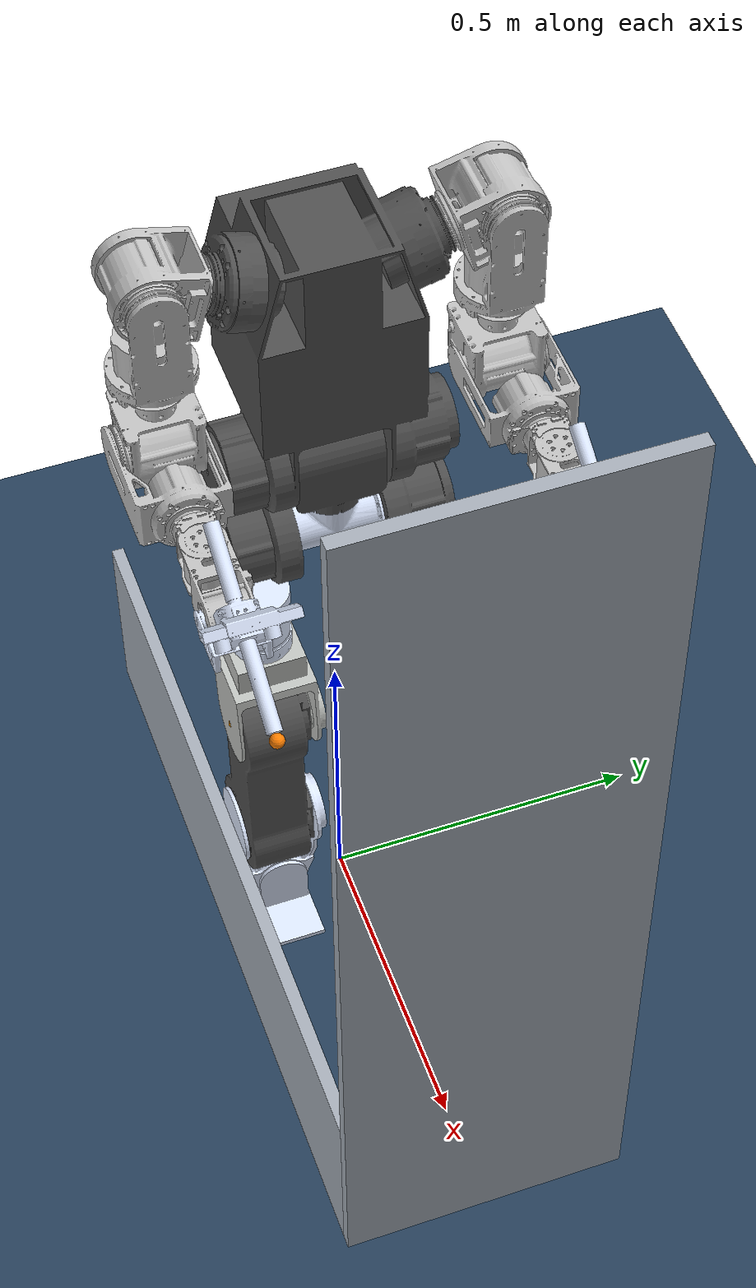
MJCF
<mujoco model="walking scene">

    <!-- Default options -->
    <compiler angle="radian" autolimits="true" />
    <option integrator="Euler" timestep="0.005" />
    <default>
        <joint armature="0.1" damping="0.1" />
        <default class="visual_only">
            <!-- visual group of 'collision' of 2 is to render -->
            <!-- All geoms with contype⁠=⁠conaffinity⁠=0 are discarded -->
            <geom type="mesh" contype="0" conaffinity="0" group="2" />
        </default>
        <default class="visual_collision">
            <!-- visual group of 'collision' of 2 is to render -->
            <geom type="mesh" solimp=".9 .99 .001" solref=".015 1" group="2" />
        </default>
        <default class="no_visual_collision">
            <!-- visual group of 'collision' of 3 is NOT to render -->
            <geom type="capsule" solimp=".9 .99 .001" solref=".015 1" group="3" />
        </default>
    </default>

  <include file="./prototype_v2.1.1.xml" />

  <!-- Floor and Sky -->
  <include file="./floor.xml" />

  <worldbody>
    <geom name="wall_y_positive" type="box" pos="0.075 0.210 0.160"
          size="0.575 0.010 0.160" rgba="0.65 0.68 0.72 1"
          contype="1" conaffinity="1" group="1" />
    <geom name="wall_y_negative" type="box" pos="0.075 -0.210 0.160"
          size="0.575 0.010 0.160" rgba="0.65 0.68 0.72 1"
          contype="1" conaffinity="1" group="1" />
    <geom name="wall_x_front" type="box" pos="0.660 0 0.800"
          size="0.010 0.220 0.800" rgba="0.65 0.68 0.72 1"
          contype="1" conaffinity="1" group="1" />
  </worldbody>

</mujoco>

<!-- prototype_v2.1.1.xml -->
<mujoco model="prototype_v2.1.1">
  <compiler angle="radian" />
  <asset>
    <mesh name="pelvis_link" content_type="model/stl" file="../meshes/pelvis_link.STL" />
    <mesh name="left_hip_pitch_link" content_type="model/stl" file="../meshes/left_hip_pitch_link.STL" />
    <mesh name="left_hip_roll_link" content_type="model/stl" file="../meshes/left_hip_roll_link.STL" />
    <mesh name="left_hip_yaw_link" content_type="model/stl" file="../meshes/left_hip_yaw_link.STL" />
    <mesh name="left_knee_pitch_link" content_type="model/stl" file="../meshes/left_knee_pitch_link.STL" />
    <mesh name="left_ankle_pitch_link" content_type="model/stl" file="../meshes/left_ankle_pitch_link.STL" />
    <mesh name="left_ankle_roll_link" content_type="model/stl" file="../meshes/left_ankle_roll_link.STL" />
    <mesh name="right_hip_pitch_link" content_type="model/stl" file="../meshes/right_hip_pitch_link.STL" />
    <mesh name="right_hip_roll_link" content_type="model/stl" file="../meshes/right_hip_roll_link.STL" />
    <mesh name="right_hip_yaw_link" content_type="model/stl" file="../meshes/right_hip_yaw_link.STL" />
    <mesh name="right_knee_pitch_link" content_type="model/stl" file="../meshes/right_knee_pitch_link.STL" />
    <mesh name="right_ankle_pitch_link" content_type="model/stl" file="../meshes/right_ankle_pitch_link.STL" />
    <mesh name="right_ankle_roll_link" content_type="model/stl" file="../meshes/right_ankle_roll_link.STL" />
    <mesh name="waist_yaw_link" content_type="model/stl" file="../meshes/waist_yaw_link.STL" />
    <mesh name="waist_pitch_link" content_type="model/stl" file="../meshes/waist_pitch_link.STL" />
    <mesh name="left_shoulder_pitch_link" content_type="model/stl" file="../meshes/left_shoulder_pitch_link.STL" />
    <mesh name="left_shoulder_roll_link" content_type="model/stl" file="../meshes/left_shoulder_roll_link.STL" />
    <mesh name="left_shoulder_yaw_link" content_type="model/stl" file="../meshes/left_shoulder_yaw_link.STL" />
    <mesh name="left_elbow_pitch_link" content_type="model/stl" file="../meshes/left_elbow_pitch_link.STL" />
    <mesh name="left_wrist_roll_link" content_type="model/stl" file="../meshes/left_wrist_roll_link.STL" />
    <mesh name="left_wrist_yaw_link" content_type="model/stl" file="../meshes/left_wrist_yaw_link.STL" />
    <mesh name="right_shoulder_pitch_link" content_type="model/stl" file="../meshes/right_shoulder_pitch_link.STL" />
    <mesh name="right_shoulder_roll_link" content_type="model/stl" file="../meshes/right_shoulder_roll_link.STL" />
    <mesh name="right_shoulder_yaw_link" content_type="model/stl" file="../meshes/right_shoulder_yaw_link.STL" />
    <mesh name="right_elbow_pitch_link" content_type="model/stl" file="../meshes/right_elbow_pitch_link.STL" />
    <mesh name="right_wrist_roll_link" content_type="model/stl" file="../meshes/right_wrist_roll_link.STL" />
    <mesh name="right_wrist_yaw_link" content_type="model/stl" file="../meshes/right_wrist_yaw_link.STL" />
    <mesh name="right_wrist_pitch_link" content_type="model/stl" file="../../prototype_v2.1/meshes/right_wrist_pitch_link.STL" />
  </asset>
  <worldbody>
    <body name="pelvis_link" pos="0 0 0.85851">
      <inertial pos="-8.97641009268044E-09 -2.77555756156289E-17 0.0108648264545672" mass="0.784597038788837" fullinertia="0.00185392443193884 0.00119922876251883 0.0017074386215359 -1.45618415560541E-10 -6.93611949427077E-07 3.18516087515177E-20" />
      <freejoint name="floating_base_joint" />
      <geom type="mesh" rgba="0.866667 0.909804 1 1" mesh="pelvis_link" />
      <body name="left_hip_pitch_link" pos="0 0.065 0">
        <inertial pos="-0.00820054 0.0460811 -0.00473458" quat="0.627526 0.380718 0.325875 0.595878" mass="4.25232" diaginertia="0.00965432 0.00860328 0.00838481" />
        <joint name="left_hip_pitch_joint" range="-3.1416 3.1416" actuatorfrcrange="-440 440" axis="0 1 0" />
        <geom type="mesh" rgba="0.309804 0.309804 0.309804 1" mesh="left_hip_pitch_link" />
        <body name="left_hip_roll_link" pos="-0.086603 0.04555 -0.05">
          <inertial pos="-0.011502 9.43627e-05 -0.0653877" quat="0.961489 0.00699261 -0.274733 0.00330553" mass="6.23838" diaginertia="0.0162939 0.0138826 0.0121148" />
          <joint name="left_hip_roll_joint" range="-3.1416 3.1416" actuatorfrcrange="-440 440" axis="-0.866027 0 -0.499998" />
          <geom type="mesh" rgba="0.866667 0.909804 1 1" mesh="left_hip_roll_link" />
          <body name="left_hip_yaw_link" pos="0.08384 0 -0.18411" quat="0.999731 0 -0.0232019 0">
            <inertial pos="0.00719369 -0.00171514 -0.0808675" quat="0.997364 0.0302373 -0.0658739 0.00346918" mass="1.22854" diaginertia="0.00707314 0.0056853 0.00451328" />
            <joint name="left_hip_yaw_joint" range="-3.1416 3.1416" actuatorfrcrange="-120 120" axis="0.0463912 0 0.998923" />
            <geom type="mesh" rgba="0.866667 0.909804 1 1" mesh="left_hip_yaw_link" />
            <body name="left_knee_pitch_link" pos="0.012788 0.05311 -0.15576">
              <inertial pos="-0.00931024 -0.0488192 -0.13476" quat="0.706239 0.024912 0.0248638 0.707098" mass="9.25315" diaginertia="0.0448875 0.0406769 0.0205352" />
              <joint name="left_knee_pitch_joint" range="-2.2689 2.2689" actuatorfrcrange="-440 440" axis="0 1 0" />
              <geom type="mesh" rgba="0.866667 0.909804 1 1" mesh="left_knee_pitch_link" />
              <body name="left_ankle_pitch_link" pos="-0.02 0 -0.26926" quat="0.999731 0 0.0232019 0">
                <inertial pos="-0.00242028 -0.0550444 -0.0779381" quat="0.999533 -0.0305693 -5.73122e-05 -3.36933e-06" mass="1.08931" diaginertia="0.00472436 0.00326892 0.00259595" />
                <joint name="left_ankle_pitch_joint" range="-2.0944 2.0944" actuatorfrcrange="-440 440" axis="0 1 0" />
                <geom type="mesh" rgba="0.866667 0.909804 1 1" mesh="left_ankle_pitch_link" />
                <body name="left_ankle_roll_link" pos="0.03525 -0.05311 -0.125">
                  <inertial pos="-0.0406029 0 -0.0527118" quat="0 0.723754 0 0.690059" mass="1.08392" diaginertia="0.00359429 0.00327638 0.000945788" />
                  <joint name="left_ankle_roll_joint" range="-0.6981 0.6981" actuatorfrcrange="-60 60" axis="1 0 0" />
                  <geom type="mesh" rgba="0.866667 0.909804 1 1" mesh="left_ankle_roll_link" />
                  <site name="left_foot_floor" pos="-0.04125 0 -0.0735" size="0.008" rgba="0 1 0 1" />
                </body>
              </body>
              <site name="left_knee_frame" pos="0 0 0" size="0.008" rgba="1 0.6 0 1" />
            </body>
          </body>
        </body>
      </body>
      <body name="right_hip_pitch_link" pos="0 -0.065 0">
        <inertial pos="-0.00820054 -0.0460811 -0.00473458" quat="0.595585 0.326458 0.381313 0.627139" mass="4.25232" diaginertia="0.00965431 0.00860402 0.00838408" />
        <joint name="right_hip_pitch_joint" range="-3.1416 3.1416" actuatorfrcrange="-440 440" axis="0 1 0" />
        <geom type="mesh" rgba="0.309804 0.309804 0.309804 1" mesh="right_hip_pitch_link" />
        <body name="right_hip_roll_link" pos="-0.086603 -0.04555 -0.05">
          <inertial pos="-0.011502 9.43564e-05 -0.0653877" quat="0.961489 0.00702423 -0.274734 0.00331514" mass="6.23838" diaginertia="0.0162939 0.0138822 0.0121152" />
          <joint name="right_hip_roll_joint" range="-3.1416 3.1416" actuatorfrcrange="-440 440" axis="-0.866027 0 -0.499998" />
          <geom type="mesh" rgba="0.866667 0.909804 1 1" mesh="right_hip_roll_link" />
          <body name="right_hip_yaw_link" pos="0.08384 0 -0.18411">
            <inertial pos="0.0109375 0.00158201 -0.0804467" quat="0.995567 -0.0301486 -0.0889969 -0.00416984" mass="1.22854" diaginertia="0.00707314 0.0056853 0.00451328" />
            <joint name="right_hip_yaw_joint" range="-3.1416 3.1416" actuatorfrcrange="-120 120" />
            <geom type="mesh" rgba="0.756863 0.768627 0.752941 1" mesh="right_hip_yaw_link" />
            <body name="right_knee_pitch_link" pos="0.02 -0.05661 -0.155">
              <inertial pos="-0.00304801 0.048819 -0.135047" quat="0.707496 0.00822351 0.00825132 0.706622" mass="9.25308" diaginertia="0.0448873 0.0408486 0.0203631" />
              <joint name="right_knee_pitch_joint" range="-2.2689 2.2689" actuatorfrcrange="-440 440" axis="0 1 0" />
              <geom type="mesh" rgba="0.309804 0.309804 0.309804 1" mesh="right_knee_pitch_link" />
              <body name="right_ankle_pitch_link" pos="-0.0074854 0 -0.2699">
                <inertial pos="-0.00242028 0.0550444 -0.0779381" quat="0.99954 0.0303284 -5.72928e-05 3.34587e-06" mass="1.08931" diaginertia="0.00472436 0.00326963 0.00259524" />
                <joint name="right_ankle_pitch_joint" range="-2.0944 2.0944" actuatorfrcrange="-440 440" axis="0 1 0" />
                <geom type="mesh" rgba="0.866667 0.909804 1 1" mesh="right_ankle_pitch_link" />
                <body name="right_ankle_roll_link" pos="0.03525 0.05311 -0.125">
                  <inertial pos="-0.0406029 0 -0.0527118" quat="0 0.723754 0 0.690059" mass="1.08392" diaginertia="0.00359429 0.00327638 0.000945788" />
                  <joint name="right_ankle_roll_joint" range="-0.6981 0.6981" actuatorfrcrange="-60 60" axis="1 0 0" />
                  <geom type="mesh" rgba="0.866667 0.909804 1 1" mesh="right_ankle_roll_link" />
                  <site name="right_foot_floor" pos="-0.04125 0 -0.0735" size="0.008" rgba="0 1 0 1" />
                </body>
              </body>
              <site name="right_knee_frame" pos="0 0 0" size="0.008" rgba="1 0.6 0 1" />
            </body>
          </body>
        </body>
      </body>
      <body name="waist_yaw_link" pos="0 0 0.049">
        <inertial pos="0 7.3596e-09 0.076521" quat="0.707107 0.707107 0 0" mass="1.51535" diaginertia="0.00470753 0.00431502 0.0033082" />
        <joint name="waist_yaw_joint" range="-3.1416 3.1416" actuatorfrcrange="-120 120" />
        <geom type="mesh" rgba="0.309804 0.309804 0.309804 1" mesh="waist_yaw_link" />
        <body name="waist_pitch_link" pos="0 0 0.1025">
          <inertial pos="-0.00245884 0.000228142 0.126528" quat="0.715083 0.698439 -0.0176726 0.0229529" mass="16.5953" diaginertia="0.117269 0.0884814 0.0840695" />
          <joint name="waist_pitch_joint" range="-0.5236 1.5708" actuatorfrcrange="-880 880" axis="0 1 0" />
          <geom type="mesh" rgba="0.309804 0.309804 0.309804 1" mesh="waist_pitch_link" />
          <body name="left_shoulder_pitch_link" pos="0.005002 0.16096 0.34961">
            <inertial pos="0.00351066 0.0593843 0.0158737" quat="0.596739 0.785659 -0.100608 -0.128531" mass="1.30301" diaginertia="0.00210813 0.00169533 0.00157503" />
            <joint name="left_shoulder_pitch_joint" range="-2.22529 2.22529" actuatorfrcrange="-120 120" axis="0 0.965926 0.258819" />
            <geom type="mesh" rgba="0.752941 0.752941 0.752941 1" mesh="left_shoulder_pitch_link" />
            <body name="left_shoulder_roll_link" pos="0.056998 0.076308 0.020448">
              <inertial pos="-0.0391671 -0.000373265 -0.103067" quat="0.976825 -0.00972197 0.208858 -0.045782" mass="1.31133" diaginertia="0.00254636 0.00253025 0.00157224" />
              <joint name="left_shoulder_roll_joint" range="-0.261799 3.40339" actuatorfrcrange="-120 120" axis="1 0 0" />
              <geom type="mesh" rgba="0.752941 0.752941 0.752941 1" mesh="left_shoulder_roll_link" />
              <body name="left_shoulder_yaw_link" pos="-0.047998 0 -0.164">
                <inertial pos="1.04708e-05 0.00306252 -0.0835337" quat="0.698327 0.109537 -0.106087 0.699347" mass="1.41633" diaginertia="0.00201873 0.00165446 0.00154855" />
                <joint name="left_shoulder_yaw_joint" range="-2.2253 2.2253" actuatorfrcrange="-120 120" axis="0 0 -1" />
                <geom type="mesh" rgba="0.752941 0.752941 0.752941 1" mesh="left_shoulder_yaw_link" />
                <body name="left_elbow_pitch_link" pos="0 0.057 -0.109">
                  <inertial pos="0.0989174 -0.0428684 1.12374e-05" quat="0.100037 0.69785 -0.114325 0.699949" mass="0.884104" diaginertia="0.00177209 0.00174286 0.000784864" />
                  <joint name="left_elbow_pitch_joint" range="-0.698132 3.83972" actuatorfrcrange="-120 120" axis="0 1 0" />
                  <geom type="mesh" rgba="0.752941 0.752941 0.752941 1" mesh="left_elbow_pitch_link" />
                  <body name="left_wrist_roll_link" pos="0.155502 -0.053 0">
                    <inertial pos="0.0409389 1.44011e-06 0.000142694" quat="0.000167826 0.394201 3.11856e-05 0.919024" mass="0.327222" diaginertia="0.000187696 0.000182806 0.000136231" />
                    <joint name="left_wrist_roll_joint" range="-2.96706 2.96706" actuatorfrcrange="-60 60" axis="1 0 0" />
                    <geom type="mesh" rgba="0.752941 0.752941 0.752941 1" mesh="left_wrist_roll_link" />
                    <body name="left_wrist_yaw_link" pos="0.057 0 0.031">
                      <inertial pos="0.0668216 0.000906687 -0.0264071" quat="0.000750639 0.702279 -0.000979261 0.711901" mass="0.398649" diaginertia="0.000245797 0.000235943 0.000145456" />
                      <joint name="left_wrist_yaw_joint" range="-1.26275 1.26275" actuatorfrcrange="-36 36" />
                      <geom type="mesh" rgba="0.752941 0.752941 0.752941 1" mesh="left_wrist_yaw_link" />
                      <body name="left_wrist_pitch_link" pos="0.097 0.0315 -0.0285">
                        <inertial pos="0.0701643 -0.0080589 0.0124248" quat="0.639163 -0.0845284 -0.0710007 0.761108" mass="0.2" diaginertia="0.000562349 0.000499452 0.000130589" />
                        <joint name="left_wrist_pitch_joint" range="-1.5708 1.5708" actuatorfrcrange="-36 36" axis="0 1 0" />
                        <geom type="mesh" rgba="0.866667 0.909804 1 1" mesh="right_wrist_pitch_link" />
                      </body>
                    </body>
                  </body>
                </body>
              </body>
            </body>
          </body>
          <body name="right_shoulder_pitch_link" pos="0.00499851 -0.160962 0.349607">
            <inertial pos="0.00351417 -0.059365 0.0159458" quat="0.779749 0.604441 0.130447 0.0981125" mass="1.30301" diaginertia="0.00210813 0.00169533 0.00157503" />
            <joint name="right_shoulder_pitch_joint" range="-2.22529 2.22529" actuatorfrcrange="-120 120" axis="0 -0.965926 0.258819" />
            <geom type="mesh" rgba="0.752941 0.752941 0.752941 1" mesh="right_shoulder_pitch_link" />
            <body name="right_shoulder_roll_link" pos="0.0570015 -0.0763084 0.0204462">
              <inertial pos="-0.0391671 -0.000373022 -0.103063" quat="0.976825 -0.00972197 0.208858 -0.045782" mass="1.31133" diaginertia="0.00254636 0.00253025 0.00157224" />
              <joint name="right_shoulder_roll_joint" range="-3.40339 0.261799" actuatorfrcrange="-120 120" axis="1 0 0" />
              <geom type="mesh" rgba="0.752941 0.752941 0.752941 1" mesh="right_shoulder_roll_link" />
              <body name="right_shoulder_yaw_link" pos="-0.0479978 0 -0.163998">
                <inertial pos="-1.49518e-05 -0.00306231 -0.0835337" quat="0.698327 -0.109537 0.106087 0.699347" mass="1.41633" diaginertia="0.00201873 0.00165446 0.00154855" />
                <joint name="right_shoulder_yaw_joint" range="-2.2253 2.2253" actuatorfrcrange="-120 120" axis="0 0 -1" />
                <geom type="mesh" rgba="0.752941 0.752941 0.752941 1" mesh="right_shoulder_yaw_link" />
                <body name="right_elbow_pitch_link" pos="0 -0.0569999 -0.109">
                  <inertial pos="0.0989129 0.0428684 -1.17024e-05" quat="-0.114325 0.699949 0.100037 0.69785" mass="0.884104" diaginertia="0.00177209 0.00174286 0.000784864" />
                  <joint name="right_elbow_pitch_joint" range="-0.698132 3.83972" actuatorfrcrange="-120 120" axis="0 -1 0" />
                  <geom type="mesh" rgba="0.752941 0.752941 0.752941 1" mesh="right_elbow_pitch_link" />
                  <body name="right_wrist_roll_link" pos="0.155498 0.053 0">
                    <inertial pos="0.0409389 1.44011e-06 0.000142694" quat="0.000167826 0.394201 3.11856e-05 0.919024" mass="0.327222" diaginertia="0.000187696 0.000182806 0.000136231" />
                    <joint name="right_wrist_roll_joint" range="-2.96706 2.96706" actuatorfrcrange="-60 60" axis="1 0 0" />
                    <geom type="mesh" rgba="0.752941 0.752941 0.752941 1" mesh="right_wrist_roll_link" />
                    <body name="right_wrist_yaw_link" pos="0.057 0 0.031">
                      <inertial pos="0.0668216 0.000906687 -0.0264071" quat="0.000750639 0.702279 -0.000979261 0.711901" mass="0.398649" diaginertia="0.000245797 0.000235943 0.000145456" />
                      <joint name="right_wrist_yaw_joint" range="-1.26275 1.26275" actuatorfrcrange="-36 36" />
                      <geom type="mesh" rgba="0.752941 0.752941 0.752941 1" mesh="right_wrist_yaw_link" />
                      <body name="right_wrist_pitch_link" pos="0.097 0.0315 -0.0285">
                        <inertial pos="0.0701643 -0.0080589 0.0124248" quat="0.639163 -0.0845284 -0.0710007 0.761108" mass="0.2" diaginertia="0.000562349 0.000499452 0.000130589" />
                        <joint name="right_wrist_pitch_joint" range="-1.5708 1.5708" actuatorfrcrange="-36 36" axis="0 1 0" />
                        <geom type="mesh" rgba="0.866667 0.909804 1 1" mesh="right_wrist_pitch_link" />
                        <site name="right_welding_point" pos="0.19535 -0.032 -0.01908" size="0.01" rgba="1 0.5 0 1" />
                      </body>
                    </body>
                  </body>
                </body>
              </body>
            </body>
          </body>
        </body>
      </body>
    </body>
  </worldbody>
  <actuator>
    <general name="left_hip_pitch_joint" joint="left_hip_pitch_joint" ctrllimited="true" ctrlrange="-440 440" forcelimited="true" forcerange="-440 440" />
    <general name="left_hip_roll_joint" joint="left_hip_roll_joint" ctrllimited="true" ctrlrange="-440 440" forcelimited="true" forcerange="-440 440" />
    <general name="left_hip_yaw_joint" joint="left_hip_yaw_joint" ctrllimited="true" ctrlrange="-120 120" forcelimited="true" forcerange="-120 120" />
    <general name="left_knee_pitch_joint" joint="left_knee_pitch_joint" ctrllimited="true" ctrlrange="-440 440" forcelimited="true" forcerange="-440 440" />
    <general name="left_ankle_pitch_joint" joint="left_ankle_pitch_joint" ctrllimited="true" ctrlrange="-440 440" forcelimited="true" forcerange="-440 440" />
    <general name="left_ankle_roll_joint" joint="left_ankle_roll_joint" ctrllimited="true" ctrlrange="-60 60" forcelimited="true" forcerange="-60 60" />
    <general name="right_hip_pitch_joint" joint="right_hip_pitch_joint" ctrllimited="true" ctrlrange="-440 440" forcelimited="true" forcerange="-440 440" />
    <general name="right_hip_roll_joint" joint="right_hip_roll_joint" ctrllimited="true" ctrlrange="-440 440" forcelimited="true" forcerange="-440 440" />
    <general name="right_hip_yaw_joint" joint="right_hip_yaw_joint" ctrllimited="true" ctrlrange="-120 120" forcelimited="true" forcerange="-120 120" />
    <general name="right_knee_pitch_joint" joint="right_knee_pitch_joint" ctrllimited="true" ctrlrange="-440 440" forcelimited="true" forcerange="-440 440" />
    <general name="right_ankle_pitch_joint" joint="right_ankle_pitch_joint" ctrllimited="true" ctrlrange="-440 440" forcelimited="true" forcerange="-440 440" />
    <general name="right_ankle_roll_joint" joint="right_ankle_roll_joint" ctrllimited="true" ctrlrange="-60 60" forcelimited="true" forcerange="-60 60" />
    <general name="waist_yaw_joint" joint="waist_yaw_joint" ctrllimited="true" ctrlrange="-120 120" forcelimited="true" forcerange="-120 120" />
    <general name="waist_pitch_joint" joint="waist_pitch_joint" ctrllimited="true" ctrlrange="-880 880" forcelimited="true" forcerange="-880 880" />
    <general name="left_shoulder_pitch_joint" joint="left_shoulder_pitch_joint" ctrllimited="true" ctrlrange="-120 120" forcelimited="true" forcerange="-120 120" />
    <general name="left_shoulder_roll_joint" joint="left_shoulder_roll_joint" ctrllimited="true" ctrlrange="-120 120" forcelimited="true" forcerange="-120 120" />
    <general name="left_shoulder_yaw_joint" joint="left_shoulder_yaw_joint" ctrllimited="true" ctrlrange="-120 120" forcelimited="true" forcerange="-120 120" />
    <general name="left_elbow_pitch_joint" joint="left_elbow_pitch_joint" ctrllimited="true" ctrlrange="-120 120" forcelimited="true" forcerange="-120 120" />
    <general name="left_wrist_roll_joint" joint="left_wrist_roll_joint" ctrllimited="true" ctrlrange="-60 60" forcelimited="true" forcerange="-60 60" />
    <general name="left_wrist_yaw_joint" joint="left_wrist_yaw_joint" ctrllimited="true" ctrlrange="-36 36" forcelimited="true" forcerange="-36 36" />
    <general name="left_wrist_pitch_joint" joint="left_wrist_pitch_joint" ctrllimited="true" ctrlrange="-36 36" forcelimited="true" forcerange="-36 36" />
    <general name="right_shoulder_pitch_joint" joint="right_shoulder_pitch_joint" ctrllimited="true" ctrlrange="-120 120" forcelimited="true" forcerange="-120 120" />
    <general name="right_shoulder_roll_joint" joint="right_shoulder_roll_joint" ctrllimited="true" ctrlrange="-120 120" forcelimited="true" forcerange="-120 120" />
    <general name="right_shoulder_yaw_joint" joint="right_shoulder_yaw_joint" ctrllimited="true" ctrlrange="-120 120" forcelimited="true" forcerange="-120 120" />
    <general name="right_elbow_pitch_joint" joint="right_elbow_pitch_joint" ctrllimited="true" ctrlrange="-120 120" forcelimited="true" forcerange="-120 120" />
    <general name="right_wrist_roll_joint" joint="right_wrist_roll_joint" ctrllimited="true" ctrlrange="-60 60" forcelimited="true" forcerange="-60 60" />
    <general name="right_wrist_yaw_joint" joint="right_wrist_yaw_joint" ctrllimited="true" ctrlrange="-36 36" forcelimited="true" forcerange="-36 36" />
    <general name="right_wrist_pitch_joint" joint="right_wrist_pitch_joint" ctrllimited="true" ctrlrange="-36 36" forcelimited="true" forcerange="-36 36" />
  </actuator>
</mujoco>

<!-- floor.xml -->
<mujoco model="floor and sky">

    <visual>
        <headlight diffuse="0.6 0.6 0.6" ambient="0.3 0.3 0.3" specular="0 0 0" />
        <rgba haze="0.15 0.25 0.35 1" />
    </visual>

    <asset>
        <texture name="grid" type="2d" builtin="checker" rgb1=".1 .2 .3" rgb2=".2 .3 .4" width="300" height="300"/>
        <material name="grid" texture="grid" texrepeat="8 8" reflectance=".2"/>
    </asset>

    <worldbody>
        <light pos="1 -1 1.5" dir="-1 1 -1" diffuse="0.5 0.5 0.5" directional="true" />
        <geom name="floor" group="1" size="0 0 0.05" type="plane" material="grid" friction="1.0 0.005 0.001" solref="0.02 1" solimp="0.9 0.95 0.001 0.5 2"/>

    </worldbody>

</mujoco>
